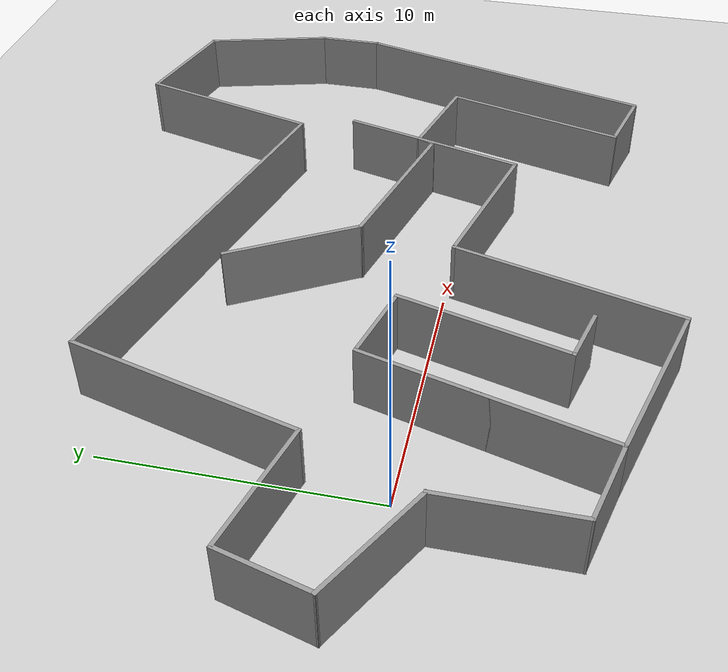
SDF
<sdf version="1.7">
 <world name="default">
  <light name="sun" type="directional">
   <pose>0 0 10 0 -0 0</pose>
   <diffuse>0.8 0.8 0.8 1</diffuse>
   <specular>0.2 0.2 0.2 1</specular>
   <attenuation>
    <range>1000</range>
    <constant>0.9</constant>
    <linear>0.01</linear>
    <quadratic>0.001</quadratic>
   </attenuation>
   <direction>-0.5 0.1 -0.9</direction>
   <spot><inner_angle>0</inner_angle><outer_angle>0</outer_angle><falloff>0</falloff></spot>
  </light>
  <model name="ground_plane">
   <static>1</static>
   <link name="link">
    <collision name="collision">
     <geometry><plane><normal>0 0 1</normal><size>100 100</size></plane></geometry>
     <surface>
      <contact><collide_bitmask>65535</collide_bitmask></contact>
      <friction><ode><mu>100</mu><mu2>50</mu2></ode></friction>
     </surface>
    </collision>
    <visual name="visual">
     <cast_shadows>0</cast_shadows>
     <geometry><plane><normal>0 0 1</normal><size>100 100</size></plane></geometry>
     <material>
      <script><uri>file://media/materials/scripts/gazebo.material</uri><name>Gazebo/Grey</name></script>
     </material>
    </visual>
   </link>
  </model>
  <gravity>0 0 -9.8</gravity>
  <magnetic_field>6e-06 2.3e-05 -4.2e-05</magnetic_field>
  <atmosphere type="adiabatic"/>
  <physics type="ode">
   <max_step_size>0.001</max_step_size>
   <real_time_factor>1</real_time_factor>
   <real_time_update_rate>1000</real_time_update_rate>
  </physics>
  <scene><ambient>0.4 0.4 0.4 1</ambient><background>0.7 0.7 0.7 1</background><shadows>1</shadows></scene>
  <spherical_coordinates>
   <surface_model>EARTH_WGS84</surface_model>
   <latitude_deg>0</latitude_deg>
   <longitude_deg>0</longitude_deg>
   <elevation>0</elevation>
   <heading_deg>0</heading_deg>
  </spherical_coordinates>
  <model name="tawahan">
   <pose>10.0564 3.04527 0 0 -0 0</pose>
   <link name="Wall_0">
    <collision name="Wall_0_Collision">
     <geometry><box><size>5.25 0.15 2.5</size></box></geometry>
     <pose>0 0 1.25 0 -0 0</pose>
    </collision>
    <visual name="Wall_0_Visual">
     <pose>0 0 1.25 0 -0 0</pose>
     <geometry><box><size>5.25 0.15 2.5</size></box></geometry>
     <material>
      <script><uri>file://media/materials/scripts/gazebo.material</uri><name>Gazebo/Grey</name></script>
      <ambient>1 1 1 1</ambient>
     </material>
     <meta><layer>0</layer></meta>
    </visual>
    <pose>-7.58876 -7.53165 0 0 -0 -1.8326</pose>
   </link>
   <link name="Wall_1">
    <collision name="Wall_1_Collision">
     <geometry><box><size>3.25 0.15 2.5</size></box></geometry>
     <pose>0 0 1.25 0 -0 0</pose>
    </collision>
    <visual name="Wall_1_Visual">
     <pose>0 0 1.25 0 -0 0</pose>
     <geometry><box><size>3.25 0.15 2.5</size></box></geometry>
     <material>
      <script><uri>file://media/materials/scripts/gazebo.material</uri><name>Gazebo/Grey</name></script>
      <ambient>1 1 1 1</ambient>
     </material>
     <meta><layer>0</layer></meta>
    </visual>
    <pose>-9.74593 -9.59359 0 0 -0 2.87979</pose>
   </link>
   <link name="Wall_10">
    <collision name="Wall_10_Collision">
     <geometry><box><size>5.5 0.15 2.5</size></box></geometry>
     <pose>0 0 1.25 0 -0 0</pose>
    </collision>
    <visual name="Wall_10_Visual">
     <pose>0 0 1.25 0 -0 0</pose>
     <geometry><box><size>5.5 0.15 2.5</size></box></geometry>
     <material>
      <script><uri>file://media/materials/scripts/gazebo.material</uri><name>Gazebo/Grey</name></script>
      <ambient>1 1 1 1</ambient>
     </material>
     <meta><layer>0</layer></meta>
    </visual>
    <pose>14.5451 8.08035 0 0 -0 -1.309</pose>
   </link>
   <link name="Wall_11">
    <collision name="Wall_11_Collision">
     <geometry><box><size>2.75 0.15 2.5</size></box></geometry>
     <pose>0 0 1.25 0 -0 0</pose>
    </collision>
    <visual name="Wall_11_Visual">
     <pose>0 0 1.25 0 -0 0</pose>
     <geometry><box><size>2.75 0.15 2.5</size></box></geometry>
     <material>
      <script><uri>file://media/materials/scripts/gazebo.material</uri><name>Gazebo/Grey</name></script>
      <ambient>1 1 1 1</ambient>
     </material>
     <meta><layer>0</layer></meta>
    </visual>
    <pose>15.2374 4.1965 0 0 -0 -1.5708</pose>
   </link>
   <link name="Wall_12">
    <collision name="Wall_12_Collision">
     <geometry><box><size>13 0.15 2.5</size></box></geometry>
     <pose>0 0 1.25 0 -0 0</pose>
    </collision>
    <visual name="Wall_12_Visual">
     <pose>0 0 1.25 0 -0 0</pose>
     <geometry><box><size>13 0.15 2.5</size></box></geometry>
     <material>
      <script><uri>file://media/materials/scripts/gazebo.material</uri><name>Gazebo/Grey</name></script>
      <ambient>1 1 1 1</ambient>
     </material>
     <meta><layer>0</layer></meta>
    </visual>
    <pose>13.5745 -3.30957 0 0 -0 -1.8326</pose>
   </link>
   <link name="Wall_13">
    <collision name="Wall_13_Collision">
     <geometry><box><size>3 0.15 2.5</size></box></geometry>
     <pose>0 0 1.25 0 -0 0</pose>
    </collision>
    <visual name="Wall_13_Visual">
     <pose>0 0 1.25 0 -0 0</pose>
     <geometry><box><size>3 0.15 2.5</size></box></geometry>
     <material>
      <script><uri>file://media/materials/scripts/gazebo.material</uri><name>Gazebo/Grey</name></script>
      <ambient>1 1 1 1</ambient>
     </material>
     <meta><layer>0</layer></meta>
    </visual>
    <pose>10.5352 -9.14683 0 0 -0 2.87979</pose>
   </link>
   <link name="Wall_14">
    <collision name="Wall_14_Collision">
     <geometry><box><size>7.5 0.15 2.5</size></box></geometry>
     <pose>0 0 1.25 0 -0 0</pose>
    </collision>
    <visual name="Wall_14_Visual">
     <pose>0 0 1.25 0 -0 0</pose>
     <geometry><box><size>7.5 0.15 2.5</size></box></geometry>
     <material>
      <script><uri>file://media/materials/scripts/gazebo.material</uri><name>Gazebo/Grey</name></script>
      <ambient>1 1 1 1</ambient>
     </material>
     <meta><layer>0</layer></meta>
    </visual>
    <pose>10.1099 -5.22824 0 0 -0 1.309</pose>
   </link>
   <link name="Wall_15">
    <collision name="Wall_15_Collision">
     <geometry><box><size>4 0.15 2.5</size></box></geometry>
     <pose>0 0 1.25 0 -0 0</pose>
    </collision>
    <visual name="Wall_15_Visual">
     <pose>0 0 1.25 0 -0 0</pose>
     <geometry><box><size>4 0.15 2.5</size></box></geometry>
     <material>
      <script><uri>file://media/materials/scripts/gazebo.material</uri><name>Gazebo/Grey</name></script>
      <ambient>1 1 1 1</ambient>
     </material>
     <meta><layer>0</layer></meta>
    </visual>
    <pose>9.20163 -1.18023 0 0 -0 2.87979</pose>
   </link>
   <link name="Wall_16">
    <collision name="Wall_16_Collision">
     <geometry><box><size>4.5 0.15 2.5</size></box></geometry>
     <pose>0 0 1.25 0 -0 0</pose>
    </collision>
    <visual name="Wall_16_Visual">
     <pose>0 0 1.25 0 -0 0</pose>
     <geometry><box><size>4.5 0.15 2.5</size></box></geometry>
     <material>
      <script><uri>file://media/materials/scripts/gazebo.material</uri><name>Gazebo/Grey</name></script>
      <ambient>1 1 1 1</ambient>
     </material>
     <meta><layer>0</layer></meta>
    </visual>
    <pose>6.77929 -2.78289 0 0 -0 -1.8326</pose>
   </link>
   <link name="Wall_17">
    <collision name="Wall_17_Collision">
     <geometry><box><size>6.25 0.15 2.5</size></box></geometry>
     <pose>0 0 1.25 0 -0 0</pose>
    </collision>
    <visual name="Wall_17_Visual">
     <pose>0 0 1.25 0 -0 0</pose>
     <geometry><box><size>6.25 0.15 2.5</size></box></geometry>
     <material>
      <script><uri>file://media/materials/scripts/gazebo.material</uri><name>Gazebo/Grey</name></script>
      <ambient>1 1 1 1</ambient>
     </material>
     <meta><layer>0</layer></meta>
    </visual>
    <pose>3.27028 -4.09438 0 0 -0 2.87979</pose>
   </link>
   <link name="Wall_18">
    <collision name="Wall_18_Collision">
     <geometry><box><size>9 0.15 2.5</size></box></geometry>
     <pose>0 0 1.25 0 -0 0</pose>
    </collision>
    <visual name="Wall_18_Visual">
     <pose>0 0 1.25 0 -0 0</pose>
     <geometry><box><size>9 0.15 2.5</size></box></geometry>
     <material>
      <script><uri>file://media/materials/scripts/gazebo.material</uri><name>Gazebo/Grey</name></script>
      <ambient>1 1 1 1</ambient>
     </material>
     <meta><layer>0</layer></meta>
    </visual>
    <pose>-0.821064 -7.57921 0 0 -0 -1.8326</pose>
   </link>
   <link name="Wall_19">
    <collision name="Wall_19_Collision">
     <geometry><box><size>6.70159 0.15 2.5</size></box></geometry>
     <pose>0 0 1.25 0 -0 0</pose>
    </collision>
    <visual name="Wall_19_Visual">
     <pose>0 0 1.25 0 -0 0</pose>
     <geometry><box><size>6.70159 0.15 2.5</size></box></geometry>
     <material>
      <script><uri>file://media/materials/scripts/gazebo.material</uri><name>Gazebo/Grey</name></script>
      <ambient>1 1 1 1</ambient>
     </material>
     <meta><layer>0</layer></meta>
    </visual>
    <pose>-5.10754 -10.9241 0 0 -0 2.85394</pose>
   </link>
   <link name="Wall_2">
    <collision name="Wall_2_Collision">
     <geometry><box><size>5 0.15 2.5</size></box></geometry>
     <pose>0 0 1.25 0 -0 0</pose>
    </collision>
    <visual name="Wall_2_Visual">
     <pose>0 0 1.25 0 -0 0</pose>
     <geometry><box><size>5 0.15 2.5</size></box></geometry>
     <material>
      <script><uri>file://media/materials/scripts/gazebo.material</uri><name>Gazebo/Grey</name></script>
      <ambient>1 1 1 1</ambient>
     </material>
     <meta><layer>0</layer></meta>
    </visual>
    <pose>-11.2431 -6.76742 0 0 -0 1.5708</pose>
   </link>
   <link name="Wall_20">
    <collision name="Wall_20_Collision">
     <geometry><box><size>9.5 0.15 2.5</size></box></geometry>
     <pose>0 0 1.25 0 -0 0</pose>
    </collision>
    <visual name="Wall_20_Visual">
     <pose>0 0 1.25 0 -0 0</pose>
     <geometry><box><size>9.5 0.15 2.5</size></box></geometry>
     <material>
      <script><uri>file://media/materials/scripts/gazebo.material</uri><name>Gazebo/Grey</name></script>
      <ambient>1 1 1 1</ambient>
     </material>
     <meta><layer>0</layer></meta>
    </visual>
    <pose>-7.03876 -5.47905 0 0 -0 1.309</pose>
   </link>
   <link name="Wall_21">
    <collision name="Wall_21_Collision">
     <geometry><box><size>3.25 0.15 2.5</size></box></geometry>
     <pose>0 0 1.25 0 -0 0</pose>
    </collision>
    <visual name="Wall_21_Visual">
     <pose>0 0 1.25 0 -0 0</pose>
     <geometry><box><size>3.25 0.15 2.5</size></box></geometry>
     <material>
      <script><uri>file://media/materials/scripts/gazebo.material</uri><name>Gazebo/Grey</name></script>
      <ambient>1 1 1 1</ambient>
     </material>
     <meta><layer>0</layer></meta>
    </visual>
    <pose>-4.3316 -1.36452 0 0 -0 -0.261799</pose>
   </link>
   <link name="Wall_22">
    <collision name="Wall_22_Collision">
     <geometry><box><size>6.75 0.15 2.5</size></box></geometry>
     <pose>0 0 1.25 0 -0 0</pose>
    </collision>
    <visual name="Wall_22_Visual">
     <pose>0 0 1.25 0 -0 0</pose>
     <geometry><box><size>6.75 0.15 2.5</size></box></geometry>
     <material>
      <script><uri>file://media/materials/scripts/gazebo.material</uri><name>Gazebo/Grey</name></script>
      <ambient>1 1 1 1</ambient>
     </material>
     <meta><layer>0</layer></meta>
    </visual>
    <pose>-3.68852 -4.95324 0 0 -0 -1.8326</pose>
   </link>
   <link name="Wall_23">
    <collision name="Wall_23_Collision">
     <geometry><box><size>2.25 0.15 2.5</size></box></geometry>
     <pose>0 0 1.25 0 -0 0</pose>
    </collision>
    <visual name="Wall_23_Visual">
     <pose>0 0 1.25 0 -0 0</pose>
     <geometry><box><size>2.25 0.15 2.5</size></box></geometry>
     <material>
      <script><uri>file://media/materials/scripts/gazebo.material</uri><name>Gazebo/Grey</name></script>
      <ambient>1 1 1 1</ambient>
     </material>
     <meta><layer>0</layer></meta>
    </visual>
    <pose>-3.5284 -8.41256 0 0 -0 -0.261799</pose>
   </link>
   <link name="Wall_25">
    <collision name="Wall_25_Collision">
     <geometry><box><size>5.5 0.15 2.5</size></box></geometry>
     <pose>0 0 1.25 0 -0 0</pose>
    </collision>
    <visual name="Wall_25_Visual">
     <pose>0 0 1.25 0 -0 0</pose>
     <geometry><box><size>5.5 0.15 2.5</size></box></geometry>
     <material>
      <script><uri>file://media/materials/scripts/gazebo.material</uri><name>Gazebo/Grey</name></script>
      <ambient>1 1 1 1</ambient>
     </material>
     <meta><layer>0</layer></meta>
    </visual>
    <pose>-0.478409 2.69382 0 0 -0 -1.0472</pose>
   </link>
   <link name="Wall_26">
    <collision name="Wall_26_Collision">
     <geometry><box><size>6.5 0.15 2.5</size></box></geometry>
     <pose>0 0 1.25 0 -0 0</pose>
    </collision>
    <visual name="Wall_26_Visual">
     <pose>0 0 1.25 0 -0 0</pose>
     <geometry><box><size>6.5 0.15 2.5</size></box></geometry>
     <material>
      <script><uri>file://media/materials/scripts/gazebo.material</uri><name>Gazebo/Grey</name></script>
      <ambient>1 1 1 1</ambient>
     </material>
     <meta><layer>0</layer></meta>
    </visual>
    <pose>3.92591 -0.444551 0 0 -0 -0.261799</pose>
   </link>
   <link name="Wall_27">
    <collision name="Wall_27_Collision">
     <geometry><box><size>0.25 0.15 2.5</size></box></geometry>
     <pose>0 0 1.25 0 -0 0</pose>
    </collision>
    <visual name="Wall_27_Visual">
     <pose>0 0 1.25 0 -0 0</pose>
     <geometry><box><size>0.25 0.15 2.5</size></box></geometry>
     <material>
      <script><uri>file://media/materials/scripts/gazebo.material</uri><name>Gazebo/Grey</name></script>
      <ambient>1 1 1 1</ambient>
     </material>
     <meta><layer>0</layer></meta>
    </visual>
    <pose>7.04102 -1.27924 0 0 -0 -0.261799</pose>
   </link>
   <link name="Wall_28">
    <collision name="Wall_28_Collision">
     <geometry><box><size>0.810515 0.15 2.5</size></box></geometry>
     <pose>0 0 1.25 0 -0 0</pose>
    </collision>
    <visual name="Wall_28_Visual">
     <pose>0 0 1.25 0 -0 0</pose>
     <geometry><box><size>0.810515 0.15 2.5</size></box></geometry>
     <material>
      <script><uri>file://media/materials/scripts/gazebo.material</uri><name>Gazebo/Grey</name></script>
      <ambient>1 1 1 1</ambient>
     </material>
     <meta><layer>0</layer></meta>
    </visual>
    <pose>7.21577 -0.987094 0 0 -0 1.17787</pose>
   </link>
   <link name="Wall_29">
    <collision name="Wall_29_Collision">
     <geometry><box><size>3.25 0.15 2.5</size></box></geometry>
     <pose>0 0 1.25 0 -0 0</pose>
    </collision>
    <visual name="Wall_29_Visual">
     <pose>0 0 1.25 0 -0 0</pose>
     <geometry><box><size>3.25 0.15 2.5</size></box></geometry>
     <material>
      <script><uri>file://media/materials/scripts/gazebo.material</uri><name>Gazebo/Grey</name></script>
      <ambient>1 1 1 1</ambient>
     </material>
     <meta><layer>0</layer></meta>
    </visual>
    <pose>7.74339 0.81518 0 0 -0 1.309</pose>
   </link>
   <link name="Wall_3">
    <collision name="Wall_3_Collision">
     <geometry><box><size>4.75 0.15 2.5</size></box></geometry>
     <pose>0 0 1.25 0 -0 0</pose>
    </collision>
    <visual name="Wall_3_Visual">
     <pose>0 0 1.25 0 -0 0</pose>
     <geometry><box><size>4.75 0.15 2.5</size></box></geometry>
     <material>
      <script><uri>file://media/materials/scripts/gazebo.material</uri><name>Gazebo/Grey</name></script>
      <ambient>1 1 1 1</ambient>
     </material>
     <meta><layer>0</layer></meta>
    </visual>
    <pose>-13.235 -3.19242 0 0 -0 2.61799</pose>
   </link>
   <link name="Wall_4">
    <collision name="Wall_4_Collision">
     <geometry><box><size>3.5 0.15 2.5</size></box></geometry>
     <pose>0 0 1.25 0 -0 0</pose>
    </collision>
    <visual name="Wall_4_Visual">
     <pose>0 0 1.25 0 -0 0</pose>
     <geometry><box><size>3.5 0.15 2.5</size></box></geometry>
     <material>
      <script><uri>file://media/materials/scripts/gazebo.material</uri><name>Gazebo/Grey</name></script>
      <ambient>1 1 1 1</ambient>
     </material>
     <meta><layer>0</layer></meta>
    </visual>
    <pose>-14.7933 -0.424491 0 0 -0 1.309</pose>
   </link>
   <link name="Wall_5">
    <collision name="Wall_5_Collision">
     <geometry><box><size>5 0.15 2.5</size></box></geometry>
     <pose>0 0 1.25 0 -0 0</pose>
    </collision>
    <visual name="Wall_5_Visual">
     <pose>0 0 1.25 0 -0 0</pose>
     <geometry><box><size>5 0.15 2.5</size></box></geometry>
     <material>
      <script><uri>file://media/materials/scripts/gazebo.material</uri><name>Gazebo/Grey</name></script>
      <ambient>1 1 1 1</ambient>
     </material>
     <meta><layer>0</layer></meta>
    </visual>
    <pose>-12.0174 0.565799 0 0 -0 -0.261799</pose>
   </link>
   <link name="Wall_6">
    <collision name="Wall_6_Collision">
     <geometry><box><size>9 0.15 2.5</size></box></geometry>
     <pose>0 0 1.25 0 -0 0</pose>
    </collision>
    <visual name="Wall_6_Visual">
     <pose>0 0 1.25 0 -0 0</pose>
     <geometry><box><size>9 0.15 2.5</size></box></geometry>
     <material>
      <script><uri>file://media/materials/scripts/gazebo.material</uri><name>Gazebo/Grey</name></script>
      <ambient>1 1 1 1</ambient>
     </material>
     <meta><layer>0</layer></meta>
    </visual>
    <pose>-8.52977 4.21238 0 0 -0 1.309</pose>
   </link>
   <link name="Wall_7">
    <collision name="Wall_7_Collision">
     <geometry><box><size>15.5 0.15 2.5</size></box></geometry>
     <pose>0 0 1.25 0 -0 0</pose>
    </collision>
    <visual name="Wall_7_Visual">
     <pose>0 0 1.25 0 -0 0</pose>
     <geometry><box><size>15.5 0.15 2.5</size></box></geometry>
     <material>
      <script><uri>file://media/materials/scripts/gazebo.material</uri><name>Gazebo/Grey</name></script>
      <ambient>1 1 1 1</ambient>
     </material>
     <meta><layer>0</layer></meta>
    </visual>
    <pose>0.028982 6.50017 0 0 -0 -0.261799</pose>
   </link>
   <link name="Wall_8">
    <collision name="Wall_8_Collision">
     <geometry><box><size>7.75 0.15 2.5</size></box></geometry>
     <pose>0 0 1.25 0 -0 0</pose>
    </collision>
    <visual name="Wall_8_Visual">
     <pose>0 0 1.25 0 -0 0</pose>
     <geometry><box><size>7.75 0.15 2.5</size></box></geometry>
     <material>
      <script><uri>file://media/materials/scripts/gazebo.material</uri><name>Gazebo/Grey</name></script>
      <ambient>1 1 1 1</ambient>
     </material>
     <meta><layer>0</layer></meta>
    </visual>
    <pose>8.42597 8.18425 0 0 -0 1.309</pose>
   </link>
   <link name="Wall_9">
    <collision name="Wall_9_Collision">
     <geometry><box><size>4.75 0.15 2.5</size></box></geometry>
     <pose>0 0 1.25 0 -0 0</pose>
    </collision>
    <visual name="Wall_9_Visual">
     <pose>0 0 1.25 0 -0 0</pose>
     <geometry><box><size>4.75 0.15 2.5</size></box></geometry>
     <material>
      <script><uri>file://media/materials/scripts/gazebo.material</uri><name>Gazebo/Grey</name></script>
      <ambient>1 1 1 1</ambient>
     </material>
     <meta><layer>0</layer></meta>
    </visual>
    <pose>11.6311 11.2595 0 0 -0 -0.261799</pose>
   </link>
   <static>1</static>
  </model>
 </world>
</sdf>
